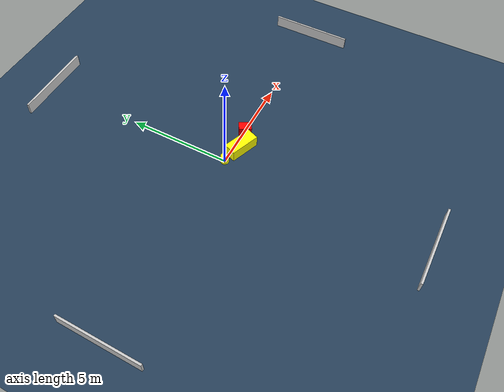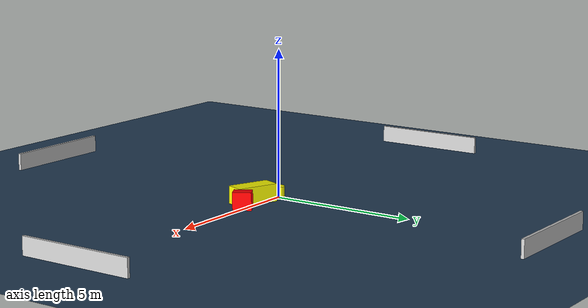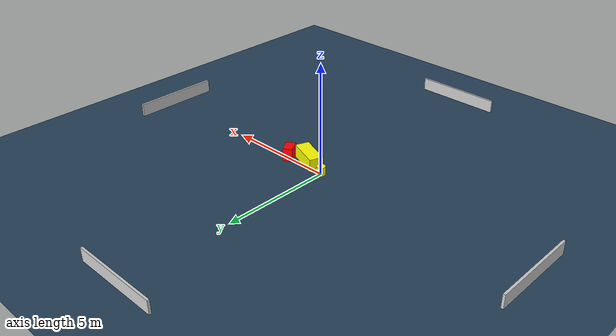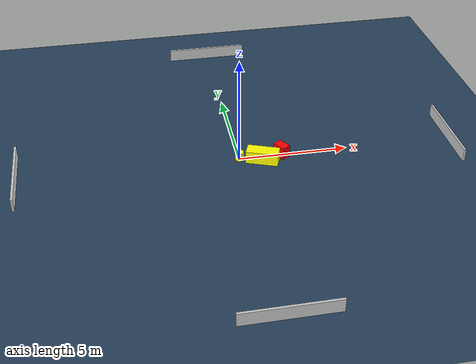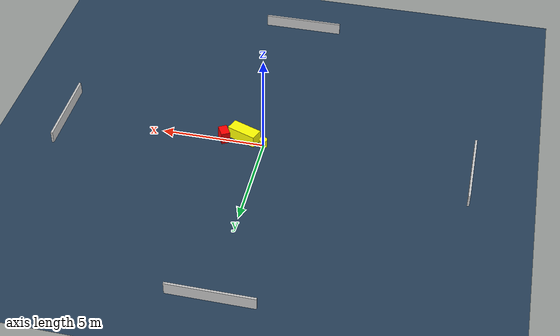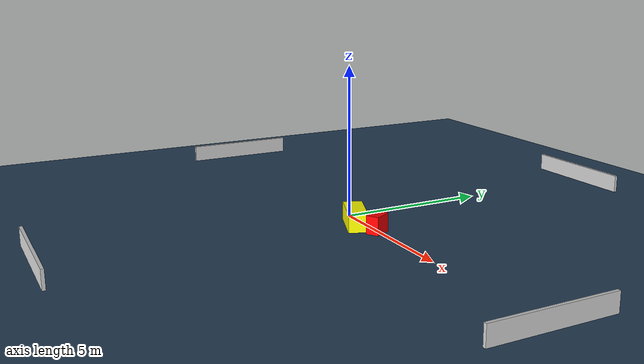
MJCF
<?xml version="1.0" ?>
<mujoco model="generated_environment">
  <option timestep="0.01" integrator="RK4" cone="elliptic"/>
  <default>
    <geom density="1"/>
  </default>
  <asset>
    <texture builtin="gradient" height="3072" name="skybox" rgb1="0.3 0.5 0.7" rgb2="0 0 0" type="skybox" width="512"/>
    <texture builtin="checker" height="300" name="groundplane" rgb1="0.2 0.3 0.4" rgb2="0.1 0.2 0.3" type="2d" width="300"/>
    <material name="groundplane" reflectance="0.2" texrepeat="5 5" texture="groundplane"/>
  </asset>
  <worldbody>
    <light dir="0 0 -1" directional="true" pos="0 0 1.5"/>
    <geom condim="3" friction="0.5 0.005 0.001" material="groundplane" name="floor" pos="0 0 0" size="0 0 0.05" type="plane"/>
    <body name="walls">
      <geom name="wall_1" condim="4" pos="-10.0 0.0 0.3" rgba="0.800000011920929 0.800000011920929 0.800000011920929 1.0" size="0.05 2.0 0.3" type="box"/>
      <geom name="wall_2" condim="4" pos="10.0 0.0 0.3" rgba="0.800000011920929 0.800000011920929 0.800000011920929 1.0" size="0.05 2.0 0.3" type="box"/>
      <geom name="wall_3" condim="4" pos="0.0 -10.0 0.3" rgba="0.800000011920929 0.800000011920929 0.800000011920929 1.0" size="2.0 0.05 0.3" type="box"/>
      <geom name="wall_4" condim="4" pos="0.0 10.0 0.3" rgba="0.800000011920929 0.800000011920929 0.800000011920929 1.0" size="2.0 0.05 0.3" type="box"/>
    </body>
    <body name="robot">
      <joint name="joint_x" type="slide" pos="0 0 0" axis="1 0 0"/>
      <joint name="joint_y" type="slide" pos="0 0 0" axis="0 1 0"/>
      <geom name="robot" type="cylinder" pos="0.0 0.0 0.2" size="0.2 0.2 0.0" mass="5.0" friction="1.0 0.005 0.0001" condim="4" rgba="1.0 1.0 0.0 1.0"/>
    </body>
    <body name="obstacle_1_movable">
      <geom name="obstacle_1_movable" condim="4" pos="1.0132530333431573 -0.3261452439937809 0.3" euler="0 0 249.11728354910332" friction="0.0 0.005 0.001" rgba="1.0 1.0 0.0 1.0" size="0.3136095226354693 0.737773549722726 0.3" type="box" mass="0.1"/>
      <joint type="free"/>
    </body>
    <body name="obstacle_2_static">
      <geom name="obstacle_2_static" condim="4" pos="1.9531040877105752 -0.056307286496304246 0.3" euler="0 0 119.69926076626354" friction="0.0 0.005 0.001" rgba="1.0 0.0 0.0 1.0" size="0.3094763937422204 0.2158307753112516 0.3" type="box"/>
    </body>
  </worldbody>
  <actuator>
    <motor name="actuator_x" joint="joint_x" gear="1" ctrlrange="-1 1"/>
    <motor name="actuator_y" joint="joint_y" gear="1" ctrlrange="-1 1"/>
  </actuator>
</mujoco>
